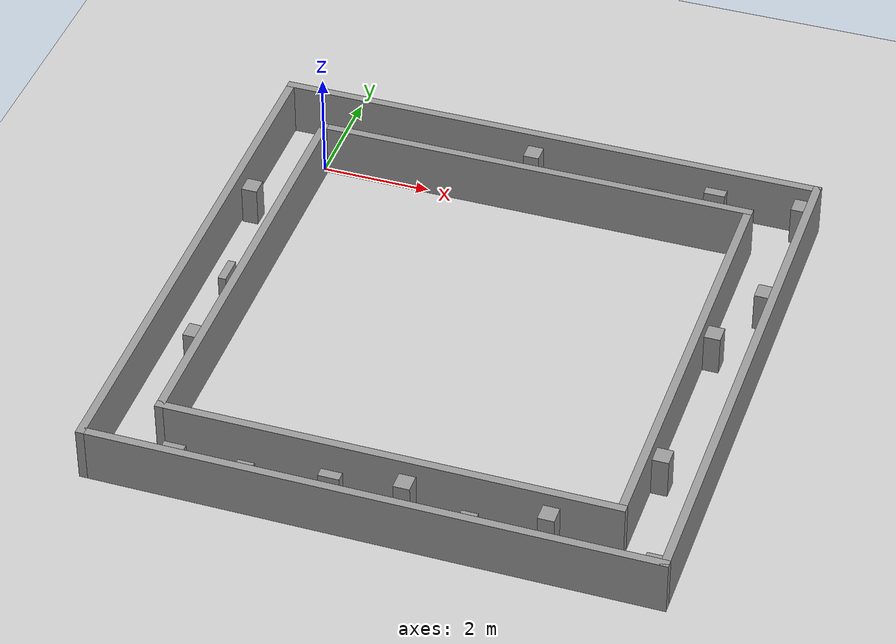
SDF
<sdf version="1.4">
 <world name="default">
  <light name="sun" type="directional">
   <pose>0 0 10 0 -0 0</pose>
   <diffuse>0.8 0.8 0.8 1</diffuse>
   <specular>0.2 0.2 0.2 1</specular>
   <attenuation>
    <range>1000</range>
    <constant>0.9</constant>
    <linear>0.01</linear>
    <quadratic>0.001</quadratic>
   </attenuation>
   <direction>-0.5 0.1 -0.9</direction>
   <spot><inner_angle>0</inner_angle><outer_angle>0</outer_angle><falloff>0</falloff></spot>
  </light>
  <model name="ground_plane">
   <static>1</static>
   <link name="link">
    <collision name="collision">
     <geometry><plane><normal>0 0 1</normal><size>100 100</size></plane></geometry>
     <surface>
      <contact><collide_bitmask>65535</collide_bitmask></contact>
      <friction><ode><mu>100</mu><mu2>50</mu2></ode></friction>
     </surface>
    </collision>
    <visual name="visual">
     <cast_shadows>0</cast_shadows>
     <geometry><plane><normal>0 0 1</normal><size>100 100</size></plane></geometry>
     <material>
      <script><uri>file://media/materials/scripts/gazebo.material</uri><name>Gazebo/Grey</name></script>
     </material>
    </visual>
   </link>
  </model>
  <gravity>0 0 -9.8</gravity>
  <magnetic_field>6e-06 2.3e-05 -4.2e-05</magnetic_field>
  <atmosphere type="adiabatic"/>
  <physics type="ode">
   <max_step_size>0.001</max_step_size>
   <real_time_factor>1</real_time_factor>
   <real_time_update_rate>1000</real_time_update_rate>
  </physics>
  <scene><ambient>0.4 0.4 0.4 1</ambient><background>0.7 0.7 0.7 1</background><shadows>1</shadows></scene>
  <spherical_coordinates>
   <surface_model>EARTH_WGS84</surface_model>
   <latitude_deg>0</latitude_deg>
   <longitude_deg>0</longitude_deg>
   <elevation>0</elevation>
   <heading_deg>0</heading_deg>
  </spherical_coordinates>
  <model name="maze_0">
   <pose>4 -4 0 0 -0 0</pose>
   <link name="Wall_1">
    <collision name="Wall_1_Collision">
     <geometry><box><size>10.15 0.15 1</size></box></geometry>
     <pose>0 0 0.5 0 -0 0</pose>
    </collision>
    <visual name="Wall_1_Visual">
     <pose>0 0 0.5 0 -0 0</pose>
     <geometry><box><size>10.15 0.15 1</size></box></geometry>
     <material>
      <script><uri>file://media/materials/scripts/gazebo.material</uri><name>Gazebo/Grey</name></script>
      <ambient>1 1 1 1</ambient>
     </material>
     <meta><layer>0</layer></meta>
    </visual>
    <pose>-0 5 0 0 -0 0</pose>
   </link>
   <link name="Wall_2">
    <collision name="Wall_2_Collision">
     <geometry><box><size>10.15 0.15 1</size></box></geometry>
     <pose>0 0 0.5 0 -0 0</pose>
    </collision>
    <visual name="Wall_2_Visual">
     <pose>0 0 0.5 0 -0 0</pose>
     <geometry><box><size>10.15 0.15 1</size></box></geometry>
     <material>
      <script><uri>file://media/materials/scripts/gazebo.material</uri><name>Gazebo/Grey</name></script>
      <ambient>1 1 1 1</ambient>
     </material>
     <meta><layer>0</layer></meta>
    </visual>
    <pose>5 0 0 0 -0 -1.5708</pose>
   </link>
   <link name="Wall_3">
    <collision name="Wall_3_Collision">
     <geometry><box><size>10.15 0.15 1</size></box></geometry>
     <pose>0 0 0.5 0 -0 0</pose>
    </collision>
    <visual name="Wall_3_Visual">
     <pose>0 0 0.5 0 -0 0</pose>
     <geometry><box><size>10.15 0.15 1</size></box></geometry>
     <material>
      <script><uri>file://media/materials/scripts/gazebo.material</uri><name>Gazebo/Grey</name></script>
      <ambient>1 1 1 1</ambient>
     </material>
     <meta><layer>0</layer></meta>
    </visual>
    <pose>-0 -5 0 0 -0 3.14159</pose>
   </link>
   <link name="Wall_4">
    <collision name="Wall_4_Collision">
     <geometry><box><size>10.15 0.15 1</size></box></geometry>
     <pose>0 0 0.5 0 -0 0</pose>
    </collision>
    <visual name="Wall_4_Visual">
     <pose>0 0 0.5 0 -0 0</pose>
     <geometry><box><size>10.15 0.15 1</size></box></geometry>
     <material>
      <script><uri>file://media/materials/scripts/gazebo.material</uri><name>Gazebo/Grey</name></script>
      <ambient>1 1 1 1</ambient>
     </material>
     <meta><layer>0</layer></meta>
    </visual>
    <pose>-5 0 0 0 -0 1.5708</pose>
   </link>
   <link name="Wall_6">
    <collision name="Wall_6_Collision">
     <geometry><box><size>8.15 0.15 1</size></box></geometry>
     <pose>0 0 0.5 0 -0 0</pose>
    </collision>
    <visual name="Wall_6_Visual">
     <pose>0 0 0.5 0 -0 0</pose>
     <geometry><box><size>8.15 0.15 1</size></box></geometry>
     <material>
      <script><uri>file://media/materials/scripts/gazebo.material</uri><name>Gazebo/Grey</name></script>
      <ambient>1 1 1 1</ambient>
     </material>
     <meta><layer>0</layer></meta>
    </visual>
    <pose>-0 4 0 0 -0 0</pose>
   </link>
   <link name="Wall_7">
    <collision name="Wall_7_Collision">
     <geometry><box><size>8.15 0.15 1</size></box></geometry>
     <pose>0 0 0.5 0 -0 0</pose>
    </collision>
    <visual name="Wall_7_Visual">
     <pose>0 0 0.5 0 -0 0</pose>
     <geometry><box><size>8.15 0.15 1</size></box></geometry>
     <material>
      <script><uri>file://media/materials/scripts/gazebo.material</uri><name>Gazebo/Grey</name></script>
      <ambient>1 1 1 1</ambient>
     </material>
     <meta><layer>0</layer></meta>
    </visual>
    <pose>4 0 0 0 -0 -1.5708</pose>
   </link>
   <link name="Wall_8">
    <collision name="Wall_8_Collision">
     <geometry><box><size>8.15 0.15 1</size></box></geometry>
     <pose>0 0 0.5 0 -0 0</pose>
    </collision>
    <visual name="Wall_8_Visual">
     <pose>0 0 0.5 0 -0 0</pose>
     <geometry><box><size>8.15 0.15 1</size></box></geometry>
     <material>
      <script><uri>file://media/materials/scripts/gazebo.material</uri><name>Gazebo/Grey</name></script>
      <ambient>1 1 1 1</ambient>
     </material>
     <meta><layer>0</layer></meta>
    </visual>
    <pose>-0 -4 0 0 -0 3.14159</pose>
   </link>
   <link name="Wall_9">
    <collision name="Wall_9_Collision">
     <geometry><box><size>8.15 0.15 1</size></box></geometry>
     <pose>0 0 0.5 0 -0 0</pose>
    </collision>
    <visual name="Wall_9_Visual">
     <pose>0 0 0.5 0 -0 0</pose>
     <geometry><box><size>8.15 0.15 1</size></box></geometry>
     <material>
      <script><uri>file://media/materials/scripts/gazebo.material</uri><name>Gazebo/Grey</name></script>
      <ambient>1 1 1 1</ambient>
     </material>
     <meta><layer>0</layer></meta>
    </visual>
    <pose>-4 0 0 0 -0 1.5708</pose>
   </link>
   <static>1</static>
  </model>
  <model name="unit_box_clone">
   <pose>6.16031 0.241754 0.371758 -1e-06 2e-06 1e-06</pose>
   <link name="link">
    <inertial>
     <mass>1</mass>
     <inertia>
      <ixx>0.166667</ixx>
      <ixy>0</ixy>
      <ixz>0</ixz>
      <iyy>0.166667</iyy>
      <iyz>0</iyz>
      <izz>0.166667</izz>
     </inertia>
    </inertial>
    <collision name="collision">
     <geometry><box><size>0.289995 0.321886 0.743514</size></box></geometry>
    </collision>
    <visual name="visual">
     <geometry><box><size>0.289995 0.321886 0.743514</size></box></geometry>
     <material>
      <script><name>Gazebo/Grey</name><uri>file://media/materials/scripts/gazebo.material</uri></script>
     </material>
    </visual>
   </link>
  </model>
  <model name="unit_box_clone_0">
   <pose>8.78002 0.764057 0.371757 1e-06 -0 0</pose>
   <link name="link">
    <inertial>
     <mass>1</mass>
     <inertia>
      <ixx>0.166667</ixx>
      <ixy>0</ixy>
      <ixz>0</ixz>
      <iyy>0.166667</iyy>
      <iyz>0</iyz>
      <izz>0.166667</izz>
     </inertia>
    </inertial>
    <collision name="collision">
     <geometry><box><size>0.289995 0.321886 0.743514</size></box></geometry>
    </collision>
    <visual name="visual">
     <geometry><box><size>0.289995 0.321886 0.743514</size></box></geometry>
     <material>
      <script><name>Gazebo/Grey</name><uri>file://media/materials/scripts/gazebo.material</uri></script>
     </material>
    </visual>
   </link>
  </model>
  <model name="unit_box_clone_1">
   <pose>8.75983 -1.74367 0.371756 4e-06 2e-06 -9e-06</pose>
   <link name="link">
    <inertial>
     <mass>1</mass>
     <inertia>
      <ixx>0.166667</ixx>
      <ixy>0</ixy>
      <ixz>0</ixz>
      <iyy>0.166667</iyy>
      <iyz>0</iyz>
      <izz>0.166667</izz>
     </inertia>
    </inertial>
    <collision name="collision">
     <geometry><box><size>0.289995 0.321886 0.743514</size></box></geometry>
    </collision>
    <visual name="visual">
     <geometry><box><size>0.289995 0.321886 0.743514</size></box></geometry>
     <material>
      <script><name>Gazebo/Grey</name><uri>file://media/materials/scripts/gazebo.material</uri></script>
     </material>
    </visual>
   </link>
  </model>
  <model name="unit_box_clone_2">
   <pose>8.22 -3.07746 0.371757 0 -0 6e-06</pose>
   <link name="link">
    <inertial>
     <mass>1</mass>
     <inertia>
      <ixx>0.166667</ixx>
      <ixy>0</ixy>
      <ixz>0</ixz>
      <iyy>0.166667</iyy>
      <iyz>0</iyz>
      <izz>0.166667</izz>
     </inertia>
    </inertial>
    <collision name="collision">
     <geometry><box><size>0.289995 0.321886 0.743514</size></box></geometry>
    </collision>
    <visual name="visual">
     <geometry><box><size>0.289995 0.321886 0.743514</size></box></geometry>
     <material>
      <script><name>Gazebo/Grey</name><uri>file://media/materials/scripts/gazebo.material</uri></script>
     </material>
    </visual>
   </link>
  </model>
  <model name="unit_box_clone_3">
   <pose>8.2215 -6.32916 0.371756 4e-06 2e-06 -6e-06</pose>
   <link name="link">
    <inertial>
     <mass>1</mass>
     <inertia>
      <ixx>0.166667</ixx>
      <ixy>0</ixy>
      <ixz>0</ixz>
      <iyy>0.166667</iyy>
      <iyz>0</iyz>
      <izz>0.166667</izz>
     </inertia>
    </inertial>
    <collision name="collision">
     <geometry><box><size>0.289995 0.321886 0.743514</size></box></geometry>
    </collision>
    <visual name="visual">
     <geometry><box><size>0.289995 0.321886 0.743514</size></box></geometry>
     <material>
      <script><name>Gazebo/Grey</name><uri>file://media/materials/scripts/gazebo.material</uri></script>
     </material>
    </visual>
   </link>
  </model>
  <model name="unit_box_clone_4">
   <pose>8.74183 -8.75702 0.371756 -2e-06 -4e-06 -3e-06</pose>
   <link name="link">
    <inertial>
     <mass>1</mass>
     <inertia>
      <ixx>0.166667</ixx>
      <ixy>0</ixy>
      <ixz>0</ixz>
      <iyy>0.166667</iyy>
      <iyz>0</iyz>
      <izz>0.166667</izz>
     </inertia>
    </inertial>
    <collision name="collision">
     <geometry><box><size>0.289995 0.321886 0.743514</size></box></geometry>
    </collision>
    <visual name="visual">
     <geometry><box><size>0.289995 0.321886 0.743514</size></box></geometry>
     <material>
      <script><name>Gazebo/Grey</name><uri>file://media/materials/scripts/gazebo.material</uri></script>
     </material>
    </visual>
   </link>
  </model>
  <model name="unit_box_clone_5">
   <pose>6.84068 -8.23595 0.371757 0 0 -3e-06</pose>
   <link name="link">
    <inertial>
     <mass>1</mass>
     <inertia>
      <ixx>0.166667</ixx>
      <ixy>0</ixy>
      <ixz>0</ixz>
      <iyy>0.166667</iyy>
      <iyz>0</iyz>
      <izz>0.166667</izz>
     </inertia>
    </inertial>
    <collision name="collision">
     <geometry><box><size>0.289995 0.321886 0.743514</size></box></geometry>
    </collision>
    <visual name="visual">
     <geometry><box><size>0.289995 0.321886 0.743514</size></box></geometry>
     <material>
      <script><name>Gazebo/Grey</name><uri>file://media/materials/scripts/gazebo.material</uri></script>
     </material>
    </visual>
   </link>
  </model>
  <model name="unit_box_clone_6">
   <pose>5.62265 -8.76128 0.371758 2e-06 1e-06 -1.1e-05</pose>
   <link name="link">
    <inertial>
     <mass>1</mass>
     <inertia>
      <ixx>0.166667</ixx>
      <ixy>0</ixy>
      <ixz>0</ixz>
      <iyy>0.166667</iyy>
      <iyz>0</iyz>
      <izz>0.166667</izz>
     </inertia>
    </inertial>
    <collision name="collision">
     <geometry><box><size>0.289995 0.321886 0.743514</size></box></geometry>
    </collision>
    <visual name="visual">
     <geometry><box><size>0.289995 0.321886 0.743514</size></box></geometry>
     <material>
      <script><name>Gazebo/Grey</name><uri>file://media/materials/scripts/gazebo.material</uri></script>
     </material>
    </visual>
   </link>
  </model>
  <model name="unit_box_clone_7">
   <pose>4.38037 -8.25694 0.371756 -2e-06 -4e-06 -1.1e-05</pose>
   <link name="link">
    <inertial>
     <mass>1</mass>
     <inertia>
      <ixx>0.166667</ixx>
      <ixy>0</ixy>
      <ixz>0</ixz>
      <iyy>0.166667</iyy>
      <iyz>0</iyz>
      <izz>0.166667</izz>
     </inertia>
    </inertial>
    <collision name="collision">
     <geometry><box><size>0.289995 0.321886 0.743514</size></box></geometry>
    </collision>
    <visual name="visual">
     <geometry><box><size>0.289995 0.321886 0.743514</size></box></geometry>
     <material>
      <script><name>Gazebo/Grey</name><uri>file://media/materials/scripts/gazebo.material</uri></script>
     </material>
    </visual>
   </link>
  </model>
  <model name="unit_box_clone_8">
   <pose>1.75034 -8.76405 0.371757 0 0 -3e-06</pose>
   <link name="link">
    <inertial>
     <mass>1</mass>
     <inertia>
      <ixx>0.166667</ixx>
      <ixy>0</ixy>
      <ixz>0</ixz>
      <iyy>0.166667</iyy>
      <iyz>0</iyz>
      <izz>0.166667</izz>
     </inertia>
    </inertial>
    <collision name="collision">
     <geometry><box><size>0.289995 0.321886 0.743514</size></box></geometry>
    </collision>
    <visual name="visual">
     <geometry><box><size>0.289995 0.321886 0.743514</size></box></geometry>
     <material>
      <script><name>Gazebo/Grey</name><uri>file://media/materials/scripts/gazebo.material</uri></script>
     </material>
    </visual>
   </link>
  </model>
  <model name="unit_box_clone_10">
   <pose>-0.273971 -5.80897 0.371756 2e-06 4e-06 -1.6e-05</pose>
   <link name="link">
    <inertial>
     <mass>1</mass>
     <inertia>
      <ixx>0.166667</ixx>
      <ixy>0</ixy>
      <ixz>0</ixz>
      <iyy>0.166667</iyy>
      <iyz>0</iyz>
      <izz>0.166667</izz>
     </inertia>
    </inertial>
    <collision name="collision">
     <geometry><box><size>0.289995 0.321886 0.743514</size></box></geometry>
    </collision>
    <visual name="visual">
     <geometry><box><size>0.289995 0.321886 0.743514</size></box></geometry>
     <material>
      <script><name>Gazebo/Grey</name><uri>file://media/materials/scripts/gazebo.material</uri></script>
     </material>
    </visual>
   </link>
  </model>
  <model name="unit_box_clone_11">
   <pose>-0.752717 -1.743 0.371756 4e-06 3e-06 -1.6e-05</pose>
   <link name="link">
    <inertial>
     <mass>1</mass>
     <inertia>
      <ixx>0.166667</ixx>
      <ixy>0</ixy>
      <ixz>0</ixz>
      <iyy>0.166667</iyy>
      <iyz>0</iyz>
      <izz>0.166667</izz>
     </inertia>
    </inertial>
    <collision name="collision">
     <geometry><box><size>0.289995 0.321886 0.743514</size></box></geometry>
    </collision>
    <visual name="visual">
     <geometry><box><size>0.289995 0.321886 0.743514</size></box></geometry>
     <material>
      <script><name>Gazebo/Grey</name><uri>file://media/materials/scripts/gazebo.material</uri></script>
     </material>
    </visual>
   </link>
  </model>
  <model name="unit_box_clone_clone">
   <pose>3.77127 0.764057 0.371757 0 -0 0</pose>
   <link name="link">
    <inertial>
     <mass>1</mass>
     <inertia>
      <ixx>0.166667</ixx>
      <ixy>0</ixy>
      <ixz>0</ixz>
      <iyy>0.166667</iyy>
      <iyz>0</iyz>
      <izz>0.166667</izz>
     </inertia>
    </inertial>
    <collision name="collision">
     <geometry><box><size>0.289995 0.321886 0.743514</size></box></geometry>
    </collision>
    <visual name="visual">
     <geometry><box><size>0.289995 0.321886 0.743514</size></box></geometry>
     <material>
      <script><name>Gazebo/Grey</name><uri>file://media/materials/scripts/gazebo.material</uri></script>
     </material>
    </visual>
   </link>
  </model>
  <model name="unit_box_clone_clone_0">
   <pose>1.09824 0.235944 0.371757 -0 -0 -0</pose>
   <link name="link">
    <inertial>
     <mass>1</mass>
     <inertia>
      <ixx>0.166667</ixx>
      <ixy>0</ixy>
      <ixz>0</ixz>
      <iyy>0.166667</iyy>
      <iyz>0</iyz>
      <izz>0.166667</izz>
     </inertia>
    </inertial>
    <collision name="collision">
     <geometry><box><size>0.289995 0.321886 0.743514</size></box></geometry>
    </collision>
    <visual name="visual">
     <geometry><box><size>0.289995 0.321886 0.743514</size></box></geometry>
     <material>
      <script><name>Gazebo/Grey</name><uri>file://media/materials/scripts/gazebo.material</uri></script>
     </material>
    </visual>
   </link>
  </model>
  <model name="unit_box_clone_7_clone">
   <pose>3.16434 -8.467 0.371757 2e-06 2e-06 4.7e-05</pose>
   <link name="link">
    <inertial>
     <mass>1</mass>
     <inertia>
      <ixx>0.166667</ixx>
      <ixy>0</ixy>
      <ixz>0</ixz>
      <iyy>0.166667</iyy>
      <iyz>0</iyz>
      <izz>0.166667</izz>
     </inertia>
    </inertial>
    <collision name="collision">
     <geometry><box><size>0.374574 0.173016 0.743513</size></box></geometry>
    </collision>
    <visual name="visual">
     <geometry><box><size>0.374574 0.173016 0.743513</size></box></geometry>
     <material>
      <script><name>Gazebo/Grey</name><uri>file://media/materials/scripts/gazebo.material</uri></script>
     </material>
    </visual>
   </link>
  </model>
  <model name="unit_box_clone_7_clone_clone">
   <pose>0.413296 -8.49385 0.299881 2e-06 5e-06 0.000746</pose>
   <link name="link">
    <inertial>
     <mass>1</mass>
     <inertia>
      <ixx>0.166667</ixx>
      <ixy>0</ixy>
      <ixz>0</ixz>
      <iyy>0.166667</iyy>
      <iyz>0</iyz>
      <izz>0.166667</izz>
     </inertia>
    </inertial>
    <collision name="collision">
     <geometry><box><size>0.387717 0.149777 0.599764</size></box></geometry>
    </collision>
    <visual name="visual">
     <geometry><box><size>0.387717 0.149777 0.599764</size></box></geometry>
     <material>
      <script><name>Gazebo/Grey</name><uri>file://media/materials/scripts/gazebo.material</uri></script>
     </material>
    </visual>
   </link>
  </model>
  <model name="unit_box_clone_7_clone_clone_0">
   <pose>-0.492034 -3.71796 0.194884 -0 -2e-06 0.000819</pose>
   <link name="link">
    <inertial>
     <mass>1</mass>
     <inertia>
      <ixx>0.166667</ixx>
      <ixy>0</ixy>
      <ixz>0</ixz>
      <iyy>0.166667</iyy>
      <iyz>0</iyz>
      <izz>0.166667</izz>
     </inertia>
    </inertial>
    <collision name="collision"><geometry><box><size>0.14409 0.505154 0.389768</size></box></geometry></collision>
    <visual name="visual">
     <geometry><box><size>0.14409 0.505154 0.389768</size></box></geometry>
     <material>
      <script><name>Gazebo/Grey</name><uri>file://media/materials/scripts/gazebo.material</uri></script>
     </material>
    </visual>
   </link>
  </model>
  <model name="unit_box_clone_7_clone_clone_1">
   <pose>7.22316 0.671831 0.371758 0 3e-06 0.000833</pose>
   <link name="link">
    <inertial>
     <mass>1</mass>
     <inertia>
      <ixx>0.166667</ixx>
      <ixy>0</ixy>
      <ixz>0</ixz>
      <iyy>0.166667</iyy>
      <iyz>0</iyz>
      <izz>0.166667</izz>
     </inertia>
    </inertial>
    <collision name="collision">
     <geometry><box><size>0.387717 0.180584 0.743514</size></box></geometry>
    </collision>
    <visual name="visual">
     <geometry><box><size>0.387717 0.180584 0.743514</size></box></geometry>
     <material>
      <script><name>Gazebo/Grey</name><uri>file://media/materials/scripts/gazebo.material</uri></script>
     </material>
    </visual>
   </link>
  </model>
 </world>
</sdf>
